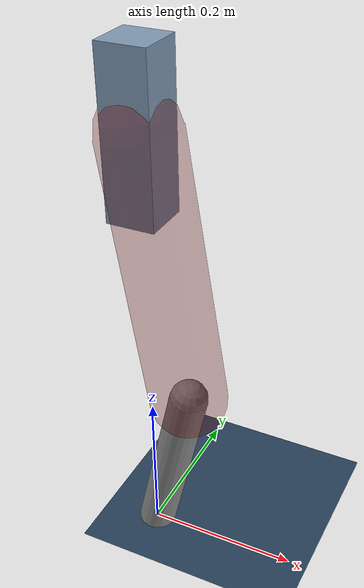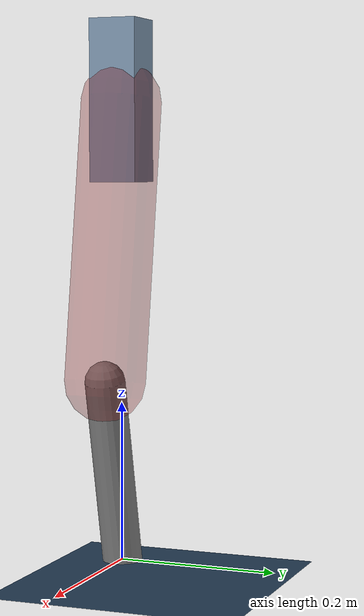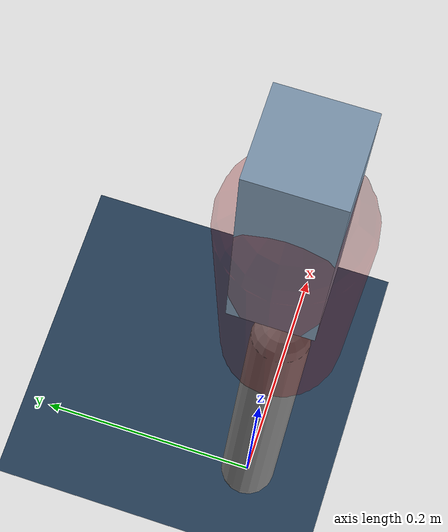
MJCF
<mujoco model="Hopper2D">
	<compiler inertiafromgeom="true" angle="radian" />
	<option timestep="0.001" integrator="implicit" cone="elliptic" solver="Newton" tolerance="1e-10" />

	<default>
		<geom contype="1" conaffinity="1" condim="3" friction="2 0.005 0.0001" solref="0.005 1" />
		<joint limited="true" damping="0.1" />
	</default>

	<asset>
		<texture name="skybox" type="skybox" builtin="gradient" rgb1=".4 .6 .8" rgb2="0 0 0" width="800" height="800" />
		<texture name="grid" type="2d" builtin="checker" rgb1=".1 .2 .3" rgb2=".2 .3 .4" width="300" height="300" mark="edge" markrgb=".2 .3 .4" />
		<material name="ground" texture="grid" texrepeat="1 1" texuniform="true" reflectance="0.1" />
		<material name="leg" rgba="0.5 0.6 0.7 1" />
	</asset>

	<worldbody>

		<geom name="floor" type="plane" size="5 5 0.25" material="ground" />

		<light directional="false" diffuse="0.8 0.8 0.8" specular="0.3 0.3 0.3" pos="0 0 2" dir="0 0 -1" />
		<light mode="targetbodycom" target="base" directional="false" diffuse="0.8 0.8 0.8" specular="0.3 0.3 0.3" pos="0 0 2" dir="0 0 -1" />

		<camera name="fixed" pos="0 -2 1" xyaxes="1 0 0 0 0 1" />
		<camera name="tracking" mode="trackcom" pos="0 -3 1" />

		<body name="root" pos="0 0 0.5762253593914991">
			<joint name="slide_x" type="slide" axis="1 0 0" range="-100 100" />
			<joint name="slide_z" type="slide" axis="0 0 1" range="0 10" />

			<body name="base" pos="0 0 0">
				<geom name="torso" type="box" size="0.03 0.03 0.1" mass="2.731" material="leg" />

				<body name="link1" pos="0 0 0" euler="0 1.415888169854121 0">
					<joint type="hinge" axis="0 -1 0" pos="0 0 0" name="hinge1" limited="true" range="-3.14 3.14" stiffness="0" damping="0.1" />
					<geom name="thigh" type="capsule" fromto="0 0 0 0.34746616535626523 0 0" size="0.05" rgba="0.5 0 0 0.3" mass="1.1196052629975428" />

					<body name="link2" pos="0.34746616535626523 0 0" euler="0 0.38113460456705756 0">
						<joint type="hinge" axis="0 -1 0" pos="0 0 0" name="hinge2" limited="true" range="-3.14 3.14" stiffness="0" damping="0.1" />
						<geom name="shank" type="capsule" fromto="0 0 0 0.23900988902397635 0 0" size="0.025" mass="0.43340890012157873" />

					</body>
				</body>
			</body>
		</body>
	</worldbody>

	<actuator>
		<motor name="torque1" joint="hinge1" ctrlrange="-64.95659359027624 64.95659359027624" ctrllimited="true" gear="1" />
		<motor name="torque2" joint="hinge2" ctrlrange="-82.51435493206958 82.51435493206958" ctrllimited="true" gear="1" />
	</actuator>
</mujoco>
